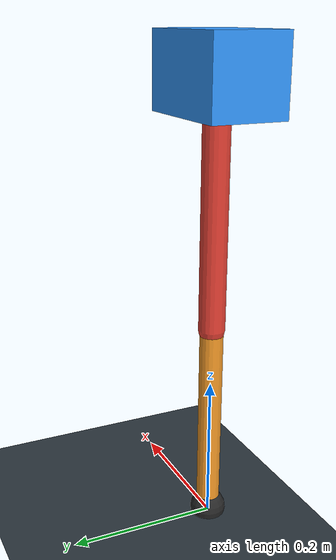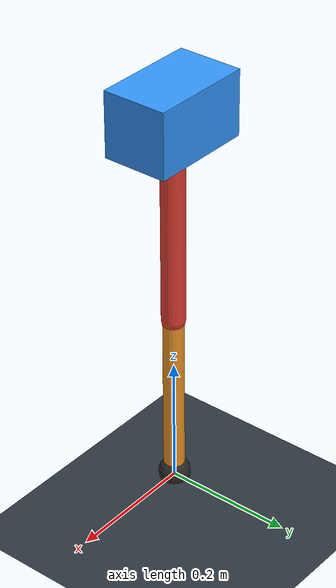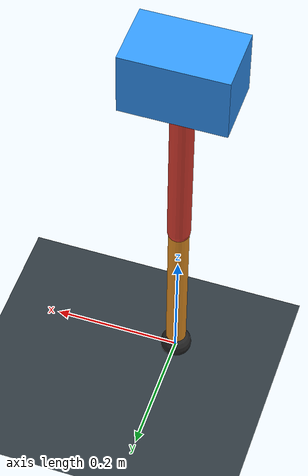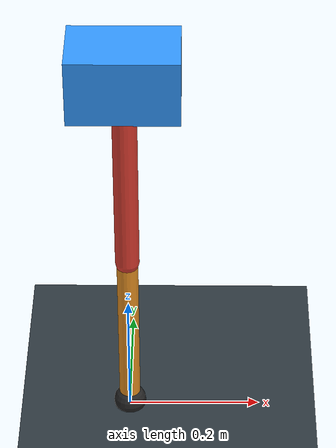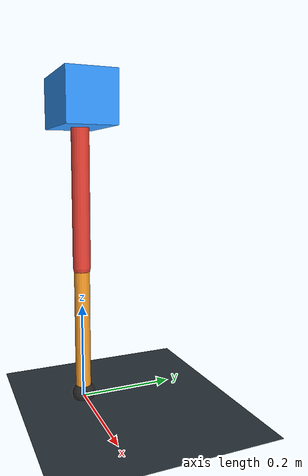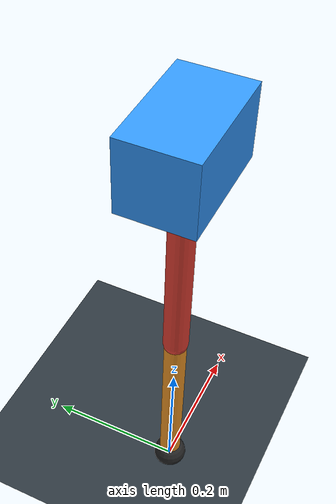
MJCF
<mujoco model="single_axis_two_bar">
  <compiler angle="radian" inertiafromgeom="true"/>
  <option timestep="0.001" integrator="implicitfast" gravity="0 0 -9.81"/>
  <default>
    <joint damping="0.08"/>
    <geom friction="1.2 0.01 0.0001" condim="3"/>
  </default>
  <worldbody>
    <geom name="floor" type="plane" size="5 5 0.1" rgba="0.18 0.22 0.25 1"/>
    <body name="carriage" pos="0 0 0.6098490206538507">
      <joint name="pole_slide" type="slide" axis="0 0 1"/>
      <geom name="payload" type="box" size="0.08 0.05 0.05" mass="3.089443883077724" rgba="0.2 0.6 1 1"/>
      <body name="thigh" pos="0 0 0">
        <joint name="hip" type="hinge" axis="0 1 0"/>
        <geom name="thigh_link" type="capsule" fromto="0 0 0 0 0 -0.3291403735724312" size="0.018" mass="0.23451686537667063" rgba="0.9 0.25 0.2 1"/>
        <body name="shank" pos="0 0 -0.3291403735724312">
          <joint name="knee" type="hinge" axis="0 1 0"/>
          <geom name="shank_link" type="capsule" fromto="0 0 0 0 0 -0.2737967611222602" size="0.016" mass="0.1950838102046068" rgba="0.95 0.6 0.15 1"/>
          <geom name="foot" type="sphere" pos="0 0 -0.2737967611222602" size="0.025" mass="0.03" rgba="0.15 0.15 0.15 1"/>
          <site name="toe" pos="0 0 -0.2737967611222602" size="0.008"/>
        </body>
      </body>
    </body>
  </worldbody>
  <actuator>
    <motor name="hip_motor" joint="hip" ctrlrange="-35.379374926110884 35.379374926110884"/>
    <motor name="knee_motor" joint="knee" ctrlrange="-152.13459793011154 152.13459793011154"/>
  </actuator>
</mujoco>
